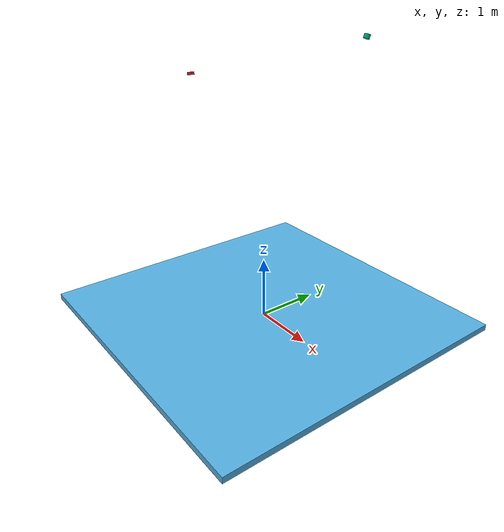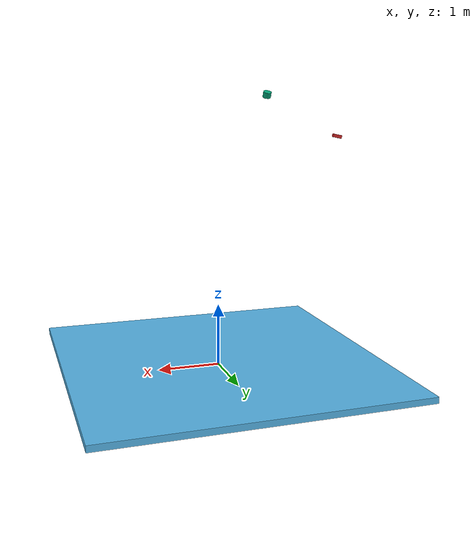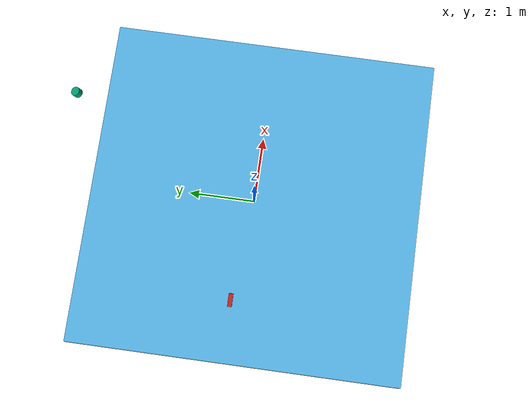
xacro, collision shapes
<?xml version="1.0"?>
<robot xmlns:xacro="http://www.ros.org/wiki/xacro" name="Fendt_Ideal_9">
    <xacro:arg name="gpu" default="true"/>
    <xacro:property name="gpu" value="$(arg gpu)" />
    <xacro:arg name="organize_cloud" default="true"/>
    <xacro:property name="organize_cloud" value="$(arg organize_cloud)" />

    <!-- Base Footprint -->
    <link name="base_footprint" />

    <!-- Base Link -->
    <joint name="footprint" type="fixed" >
    <parent link="base_footprint" />
        <child link="base_link" />
        <origin xyz="0 0 0.05" rpy="0 0 0" />
    </joint>
    <link name="base_link" >
        <visual>
        <geometry>
            <box size="5.0 5.0 0.1" />
        </geometry>
        </visual>
        <collision>
        <geometry>
            <box size="5.0 5.0 0.1" />
        </geometry>
        </collision>
        <inertial>
        <origin xyz="0 0 0"/>
        <mass value="10"/>
        <inertia ixx="3.0" ixy="0.0" ixz="0.0"
                iyy="3.0" iyz="0.0"
                izz="3.0" />
        </inertial>
    </link>

    <!-- VELODYNE -->
    <xacro:include filename="$(find velodyne_description)/urdf/VLP-16.urdf.xacro"/>
    <xacro:VLP-16 parent="base_link" name="velodyne" topic="/velodyne_points"  organize_cloud="true" hz="10" samples="440" gpu="${gpu}">
        <origin xyz="0.0 2.0 4.2" rpy="0.0 0.4 1.57" />
    </xacro:VLP-16>

    <!-- CAMERA -->
    <xacro:include filename="$(find calibration_camera_lidar)/urdf/sensors/camera.xacro"/>
    <xacro:camera_macro
        parent="base_link"
        name="cam_rear"
        update_rate="10.0"
        horizontal_fov="2.1"
        image_width="1920"
        image_height="1200"
        image_format="R8G8B8"
        min_distance="0.02"
        max_distance="350"
        noise_mean="0.0"
        noise_stddev="0.007"
        enable_visual="true">
        <origin xyz="-2.0 0.0 3.6" rpy="0.0 0.20 3.14" />
    </xacro:camera_macro>
</robot>

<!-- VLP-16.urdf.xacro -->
<robot xmlns:xacro="http://www.ros.org/wiki/xacro" name="VLP-16">
  <xacro:property name="M_PI" value="3.1415926535897931" />
  <xacro:macro name="VLP-16" params="*origin is_sim:=true parent:=base_link name:=velodyne tf_prefix:='' topic:=/velodyne_points organize_cloud:=false hz:=10 lasers:=16 samples:=1875 collision_range:=0.3 min_range:=0.0 max_range:=100.0 noise:=0.008 min_angle:=-${M_PI} max_angle:=${M_PI} gpu:=false">

    <joint name="${name}_base_mount_joint" type="fixed">
      <xacro:insert_block name="origin" />
      <parent link="${parent}"/>
      <child link="${name}_base_link"/>
    </joint>

    <link name="${name}_base_link">
      <inertial>
        <mass value="0.83"/>
        <origin xyz="0 0 0.03585"/>
        <inertia ixx="${(0.83 * (3.0*0.0516*0.0516 + 0.0717*0.0717)) / 12.0}" ixy="0" ixz="0"
          iyy="${(0.83 * (3.0*0.0516*0.0516 + 0.0717*0.0717)) / 12.0}" iyz="0"
          izz="${0.5 * 0.83 * (0.0516*0.0516)}"/>
      </inertial>
      <visual>
        <geometry>
          <mesh filename="package://velodyne_description/meshes/VLP16_base_1.dae" />
        </geometry>
      </visual>
      <visual>
        <geometry>
          <mesh filename="package://velodyne_description/meshes/VLP16_base_2.dae" />
        </geometry>
      </visual>
      <collision>
        <origin rpy="0 0 0" xyz="0 0 0.03585"/>
        <geometry>
          <cylinder radius="0.0516" length="0.0717"/>
        </geometry>
      </collision>
    </link>

    <joint name="${name}_base_scan_joint" type="fixed" >
      <origin xyz="0 0 0.0377" rpy="0 0 0" />
      <parent link="${name}_base_link" />
      <child link="${name}"/>
    </joint>

    <link name="${name}">
      <inertial>
        <mass value="0.01"/>
        <origin xyz="0 0 0"/>
        <inertia ixx="1e-7" ixy="0" ixz="0" iyy="1e-7" iyz="0" izz="1e-7"/>
      </inertial>
      <visual>
        <origin xyz="0 0 -0.0377" />
        <geometry>
          <mesh filename="package://velodyne_description/meshes/VLP16_scan.dae" />
        </geometry>
      </visual>
      <collision>
        <geometry>
          <sphere radius="0"/>
        </geometry>
      </collision>
    </link>

    <!-- Gazebo requires the velodyne_gazebo_plugins package -->
    <xacro:if value="${is_sim}">
        <gazebo reference="${name}">
            <xacro:if value="${gpu}">
                <sensor type="gpu_ray" name="${name}-VLP16">
                <pose>0 0 0 0 0 0</pose>
                <visualize>false</visualize>
                <update_rate>${hz}</update_rate>
                <ray>
                    <scan>
                    <horizontal>
                        <samples>${samples}</samples>
                        <resolution>1</resolution>
                        <min_angle>${min_angle}</min_angle>
                        <max_angle>${max_angle}</max_angle>
                    </horizontal>
                    <vertical>
                        <samples>${lasers}</samples>
                        <resolution>1</resolution>
                        <min_angle>-${15.0*M_PI/180.0}</min_angle>
                        <max_angle> ${15.0*M_PI/180.0}</max_angle>
                    </vertical>
                    </scan>
                    <range>
                    <min>${collision_range}</min>
                    <max>${max_range+1}</max>
                    <resolution>0.001</resolution>
                    </range>
                    <noise>
                    <type>gaussian</type>
                    <mean>0.0</mean>
                    <stddev>0.0</stddev>
                    </noise>
                </ray>
                <plugin name="gazebo_ros_laser_controller" filename="libgazebo_ros_velodyne_laser.so">
                    <ros>
                    <namespace>/${name}</namespace>
                    <remapping>~/out:=${topic}</remapping>
                    </ros>
                    <tf_prefix>${tf_prefix}</tf_prefix>
                    <frame_name>${name}</frame_name>
                    <organize_cloud>${organize_cloud}</organize_cloud>
                    <min_range>${min_range}</min_range>
                    <max_range>${max_range}</max_range>
                    <gaussian_noise>${noise}</gaussian_noise>
                </plugin>
                </sensor>
            </xacro:if>
            <xacro:unless value="${gpu}">
                <sensor type="ray" name="${name}-VLP16">
                <pose>0 0 0 0 0 0</pose>
                <visualize>false</visualize>
                <update_rate>${hz}</update_rate>
                <ray>
                    <scan>
                    <horizontal>
                        <samples>${samples}</samples>
                        <resolution>1</resolution>
                        <min_angle>${min_angle}</min_angle>
                        <max_angle>${max_angle}</max_angle>
                    </horizontal>
                    <vertical>
                        <samples>${lasers}</samples>
                        <resolution>1</resolution>
                        <min_angle>-${15.0*M_PI/180.0}</min_angle>
                        <max_angle> ${15.0*M_PI/180.0}</max_angle>
                    </vertical>
                    </scan>
                    <range>
                    <min>${collision_range}</min>
                    <max>${max_range+1}</max>
                    <resolution>0.001</resolution>
                    </range>
                    <noise>
                    <type>gaussian</type>
                    <mean>0.0</mean>
                    <stddev>0.0</stddev>
                    </noise>
                </ray>
                <plugin name="gazebo_ros_laser_controller" filename="libgazebo_ros_velodyne_laser.so">
                    <ros>
                    <namespace>/${name}</namespace>
                    <remapping>~/out:=${topic}</remapping>
                    </ros>
                    <tf_prefix>${tf_prefix}</tf_prefix>
                    <frame_name>${name}</frame_name>
                    <organize_cloud>${organize_cloud}</organize_cloud>
                    <min_range>${min_range}</min_range>
                    <max_range>${max_range}</max_range>
                    <gaussian_noise>${noise}</gaussian_noise>
                </plugin>
                </sensor>
            </xacro:unless>
        </gazebo>
    </xacro:if>

  </xacro:macro>
</robot>

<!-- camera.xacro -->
<robot name="sensor" xmlns:xacro="http://www.ros.org/wiki/xacro">
<!-- camera -->

    <!-- Macro to add a camera. -->
    <xacro:macro name="camera_macro"
        params="*origin parent:=base_link name:=cam update_rate:=10
        horizontal_fov:=1.5 image_width:=800 image_height:=600 image_format:=R8G8B8
        min_distance:=0.1 max_distance:=100.0 noise_mean:=0.0 noise_stddev:=0.1
        enable_visual:=true robot_namespace:=/">
        <link name="camera_${name}_link">
        <collision>
            <origin xyz="0 0 0" rpy="0 0 0" />
            <geometry>
            <box size="0.15 0.05 0.05" />
            </geometry>
        </collision>
        <xacro:if value="${enable_visual}">
            <visual>
            <origin xyz="0 0 0" rpy="0 0 0" />
            <geometry>
                <box size="0.10 0.05 0.05" />
            </geometry>
            <material name="red" />
            </visual>
        </xacro:if>
        <inertial>
            <mass value="1e-5" />
            <origin xyz="0 0 0" rpy="0 0 0" />
            <inertia ixx="1e-6" ixy="0" ixz="0" iyy="1e-6" iyz="0" izz="1e-6" />
        </inertial>
        </link>
        <joint name="camera_${name}_joint" type="fixed">
        <xacro:insert_block name="origin" />
        <parent link="${parent}" />
        <child link="camera_${name}_link" />
        </joint>
        <link name="camera_${name}_optical_link" />
        <joint name="camera_${name}_optical_joint" type="fixed" >
        <origin xyz="0 0 0" rpy="${-pi/2} 0 ${-pi/2}" />
        <parent link="camera_${name}_link" />
        <child link="camera_${name}_optical_link" />
        </joint>
        <gazebo reference="camera_${name}_link">
        <sensor type="camera" name="${robot_namespace}_camera_${name}">
            <update_rate>${update_rate}</update_rate>
            <camera name="head">
            <horizontal_fov>${horizontal_fov}</horizontal_fov>
            <image>
                <width>${image_width}</width>
                <height>${image_height}</height>
                <format>${image_format}</format>
            </image>
            <clip>
                <near>${min_distance}</near>
                <far>${max_distance}</far>
            </clip>
            <noise>
                <type>gaussian</type>
                <mean>${noise_mean}</mean>
                <stddev>${noise_stddev}</stddev>
            </noise>
            </camera>
            <plugin name="${robot_namespace}_camera_${name}_controller" filename="libgazebo_ros_camera.so">
            <robotNamespace>${robot_namespace}</robotNamespace>
            <alwaysOn>true</alwaysOn>
            <updateRate>${update_rate}</updateRate>
            <cameraName>camera_${name}</cameraName>
            <imageTopicName>image_raw</imageTopicName>
            <cameraInfoTopicName>camera_info</cameraInfoTopicName>
            <frameName>camera_${name}_link</frameName>
            <hackBaseline>0.0</hackBaseline>
            <distortionK1>0.0</distortionK1>
            <distortionK2>0.0</distortionK2>
            <distortionK3>0.0</distortionK3>
            <distortionT1>0.0</distortionT1>
            <distortionT2>0.0</distortionT2>
            </plugin>
        </sensor>
        </gazebo>
    </xacro:macro>

</robot>
